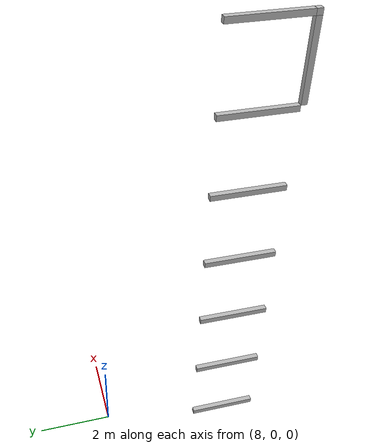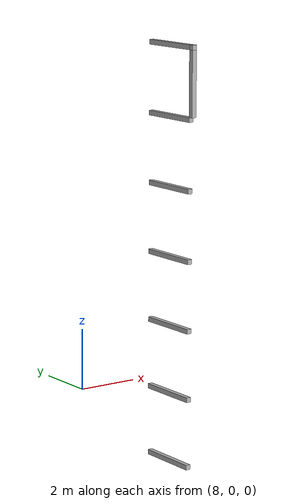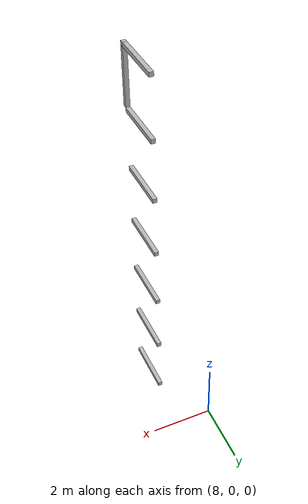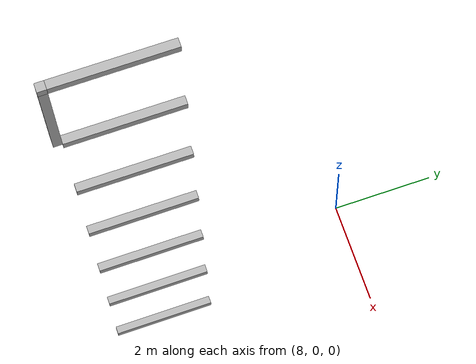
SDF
<sdf version="1.7">
 <world name="default">
  <model name="orthogonal_747_2.000.15_TS">
   <static>1</static>
   <link name="y_link_0_0_7">
    <inertial>
     <mass>1</mass>
     <inertia>
      <ixx>0.166667</ixx>
      <ixy>0</ixy>
      <ixz>0</ixz>
      <iyy>0.166667</iyy>
      <iyz>0</iyz>
      <izz>0.166667</izz>
     </inertia>
    </inertial>
    <pose>15.05 1.075 1.075 0 -0 0</pose>
    <visual name="visual_0">
     <laser_retro>148</laser_retro>
     <geometry><box><size>0.15 1e-06 0.15</size></box></geometry>
     <material>
      <script><name>Gazebo/Grey</name><uri>file://media/materials/scripts/gazebo.material</uri></script>
      <shader type="pixel"><normal_map>__default__</normal_map></shader>
      <ambient>0.678 0.498 0.659 1</ambient>
      <diffuse>0.7 0.7 0.7 1</diffuse>
      <specular>0.01 0.01 0.01 1</specular>
      <emissive>0 0 0 1</emissive>
     </material>
     <pose>0 -1 0 0 -0 0</pose>
     <transparency>1</transparency>
    </visual>
    <visual name="visual_1">
     <laser_retro>149</laser_retro>
     <geometry><box><size>0.15 1e-06 0.15</size></box></geometry>
     <material>
      <script><name>Gazebo/Grey</name><uri>file://media/materials/scripts/gazebo.material</uri></script>
      <shader type="pixel"><normal_map>__default__</normal_map></shader>
      <ambient>0.447 0.624 0.812 1</ambient>
      <diffuse>0.7 0.7 0.7 1</diffuse>
      <specular>0.01 0.01 0.01 1</specular>
      <emissive>0 0 0 1</emissive>
     </material>
     <pose>0 1 0 0 -0 0</pose>
     <transparency>1</transparency>
    </visual>
    <visual name="visual_2">
     <laser_retro>150</laser_retro>
     <geometry><box><size>0.15 2 1e-06</size></box></geometry>
     <material>
      <script><name>Gazebo/Grey</name><uri>file://media/materials/scripts/gazebo.material</uri></script>
      <shader type="pixel"><normal_map>__default__</normal_map></shader>
      <ambient>0.988 0.686 0.243 1</ambient>
      <diffuse>0.7 0.7 0.7 1</diffuse>
      <specular>0.01 0.01 0.01 1</specular>
      <emissive>0 0 0 1</emissive>
     </material>
     <pose>0 0 -0.075 0 -0 0</pose>
     <transparency>1</transparency>
    </visual>
    <visual name="visual_3">
     <laser_retro>151</laser_retro>
     <geometry><box><size>1e-06 2 0.15</size></box></geometry>
     <material>
      <script><name>Gazebo/Grey</name><uri>file://media/materials/scripts/gazebo.material</uri></script>
      <shader type="pixel"><normal_map>__default__</normal_map></shader>
      <ambient>0.988 0.914 0.31 1</ambient>
      <diffuse>0.7 0.7 0.7 1</diffuse>
      <specular>0.01 0.01 0.01 1</specular>
      <emissive>0 0 0 1</emissive>
     </material>
     <pose>0.075 0 0 0 -0 0</pose>
     <transparency>1</transparency>
    </visual>
    <visual name="visual_4">
     <laser_retro>152</laser_retro>
     <geometry><box><size>0.15 2 1e-06</size></box></geometry>
     <material>
      <script><name>Gazebo/Grey</name><uri>file://media/materials/scripts/gazebo.material</uri></script>
      <shader type="pixel"><normal_map>__default__</normal_map></shader>
      <ambient>0.937 0.161 0.161 1</ambient>
      <diffuse>0.7 0.7 0.7 1</diffuse>
      <specular>0.01 0.01 0.01 1</specular>
      <emissive>0 0 0 1</emissive>
     </material>
     <pose>0 0 0.075 0 -0 0</pose>
     <transparency>1</transparency>
    </visual>
    <visual name="visual_5">
     <laser_retro>153</laser_retro>
     <geometry><box><size>1e-06 2 0.15</size></box></geometry>
     <material>
      <script><name>Gazebo/Grey</name><uri>file://media/materials/scripts/gazebo.material</uri></script>
      <shader type="pixel"><normal_map>__default__</normal_map></shader>
      <ambient>0.541 0.886 0.204 1</ambient>
      <diffuse>0.7 0.7 0.7 1</diffuse>
      <specular>0.01 0.01 0.01 1</specular>
      <emissive>0 0 0 1</emissive>
     </material>
     <pose>-0.075 0 0 0 -0 0</pose>
     <transparency>1</transparency>
    </visual>
    <visual name="visual_texture">
     <geometry><box><size>0.149985 1.9998 0.149985</size></box></geometry>
     <material>
      <script>
       <uri>model://BASE_MODELS/simple_block_v2_textured/materials/scripts</uri>
       <uri>model://BASE_MODELS/simple_block_v2_textured/materials/textures</uri>
       <name>metal</name>
      </script>
     </material>
     <laser_retro>154</laser_retro>
    </visual>
    <collision name="collision">
     <geometry><box><size>0.15 2 0.15</size></box></geometry>
     <surface>
      <friction>
       <ode><mu>1</mu><mu2>1</mu2><fdir1>0 0 0</fdir1><slip1>0</slip1><slip2>0</slip2></ode>
       <torsional>
        <coefficient>1</coefficient>
        <patch_radius>0</patch_radius>
        <surface_radius>0</surface_radius>
        <use_patch_radius>1</use_patch_radius>
        <ode><slip>0</slip></ode>
       </torsional>
      </friction>
      <bounce><restitution_coefficient>0</restitution_coefficient><threshold>1e+06</threshold></bounce>
      <contact>
       <collide_without_contact>0</collide_without_contact>
       <collide_without_contact_bitmask>1</collide_without_contact_bitmask>
       <collide_bitmask>1</collide_bitmask>
       <ode>
        <soft_cfm>0</soft_cfm>
        <soft_erp>0.2</soft_erp>
        <kp>1e+13</kp>
        <kd>1</kd>
        <max_vel>0.01</max_vel>
        <min_depth>0</min_depth>
       </ode>
       <bullet>
        <split_impulse>1</split_impulse>
        <split_impulse_penetration_threshold>-0.01</split_impulse_penetration_threshold>
        <soft_cfm>0</soft_cfm>
        <soft_erp>0.2</soft_erp>
        <kp>1e+13</kp>
        <kd>1</kd>
       </bullet>
      </contact>
     </surface>
    </collision>
   </link>
   <link name="y_link_1_0_7">
    <inertial>
     <mass>1</mass>
     <inertia>
      <ixx>0.166667</ixx>
      <ixy>0</ixy>
      <ixz>0</ixz>
      <iyy>0.166667</iyy>
      <iyz>0</iyz>
      <izz>0.166667</izz>
     </inertia>
    </inertial>
    <pose>15.05 1.075 3.225 0 -0 0</pose>
    <visual name="visual_0">
     <laser_retro>946</laser_retro>
     <geometry><box><size>0.15 1e-06 0.15</size></box></geometry>
     <material>
      <script><name>Gazebo/Grey</name><uri>file://media/materials/scripts/gazebo.material</uri></script>
      <shader type="pixel"><normal_map>__default__</normal_map></shader>
      <ambient>0.678 0.498 0.659 1</ambient>
      <diffuse>0.7 0.7 0.7 1</diffuse>
      <specular>0.01 0.01 0.01 1</specular>
      <emissive>0 0 0 1</emissive>
     </material>
     <pose>0 -1 0 0 -0 0</pose>
     <transparency>1</transparency>
    </visual>
    <visual name="visual_1">
     <laser_retro>947</laser_retro>
     <geometry><box><size>0.15 1e-06 0.15</size></box></geometry>
     <material>
      <script><name>Gazebo/Grey</name><uri>file://media/materials/scripts/gazebo.material</uri></script>
      <shader type="pixel"><normal_map>__default__</normal_map></shader>
      <ambient>0.447 0.624 0.812 1</ambient>
      <diffuse>0.7 0.7 0.7 1</diffuse>
      <specular>0.01 0.01 0.01 1</specular>
      <emissive>0 0 0 1</emissive>
     </material>
     <pose>0 1 0 0 -0 0</pose>
     <transparency>1</transparency>
    </visual>
    <visual name="visual_2">
     <laser_retro>948</laser_retro>
     <geometry><box><size>0.15 2 1e-06</size></box></geometry>
     <material>
      <script><name>Gazebo/Grey</name><uri>file://media/materials/scripts/gazebo.material</uri></script>
      <shader type="pixel"><normal_map>__default__</normal_map></shader>
      <ambient>0.988 0.686 0.243 1</ambient>
      <diffuse>0.7 0.7 0.7 1</diffuse>
      <specular>0.01 0.01 0.01 1</specular>
      <emissive>0 0 0 1</emissive>
     </material>
     <pose>0 0 -0.075 0 -0 0</pose>
     <transparency>1</transparency>
    </visual>
    <visual name="visual_3">
     <laser_retro>949</laser_retro>
     <geometry><box><size>1e-06 2 0.15</size></box></geometry>
     <material>
      <script><name>Gazebo/Grey</name><uri>file://media/materials/scripts/gazebo.material</uri></script>
      <shader type="pixel"><normal_map>__default__</normal_map></shader>
      <ambient>0.988 0.914 0.31 1</ambient>
      <diffuse>0.7 0.7 0.7 1</diffuse>
      <specular>0.01 0.01 0.01 1</specular>
      <emissive>0 0 0 1</emissive>
     </material>
     <pose>0.075 0 0 0 -0 0</pose>
     <transparency>1</transparency>
    </visual>
    <visual name="visual_4">
     <laser_retro>950</laser_retro>
     <geometry><box><size>0.15 2 1e-06</size></box></geometry>
     <material>
      <script><name>Gazebo/Grey</name><uri>file://media/materials/scripts/gazebo.material</uri></script>
      <shader type="pixel"><normal_map>__default__</normal_map></shader>
      <ambient>0.937 0.161 0.161 1</ambient>
      <diffuse>0.7 0.7 0.7 1</diffuse>
      <specular>0.01 0.01 0.01 1</specular>
      <emissive>0 0 0 1</emissive>
     </material>
     <pose>0 0 0.075 0 -0 0</pose>
     <transparency>1</transparency>
    </visual>
    <visual name="visual_5">
     <laser_retro>951</laser_retro>
     <geometry><box><size>1e-06 2 0.15</size></box></geometry>
     <material>
      <script><name>Gazebo/Grey</name><uri>file://media/materials/scripts/gazebo.material</uri></script>
      <shader type="pixel"><normal_map>__default__</normal_map></shader>
      <ambient>0.541 0.886 0.204 1</ambient>
      <diffuse>0.7 0.7 0.7 1</diffuse>
      <specular>0.01 0.01 0.01 1</specular>
      <emissive>0 0 0 1</emissive>
     </material>
     <pose>-0.075 0 0 0 -0 0</pose>
     <transparency>1</transparency>
    </visual>
    <visual name="visual_texture">
     <geometry><box><size>0.149985 1.9998 0.149985</size></box></geometry>
     <material>
      <script>
       <uri>model://BASE_MODELS/simple_block_v2_textured/materials/scripts</uri>
       <uri>model://BASE_MODELS/simple_block_v2_textured/materials/textures</uri>
       <name>metal</name>
      </script>
     </material>
     <laser_retro>952</laser_retro>
    </visual>
    <collision name="collision">
     <geometry><box><size>0.15 2 0.15</size></box></geometry>
     <surface>
      <friction>
       <ode><mu>1</mu><mu2>1</mu2><fdir1>0 0 0</fdir1><slip1>0</slip1><slip2>0</slip2></ode>
       <torsional>
        <coefficient>1</coefficient>
        <patch_radius>0</patch_radius>
        <surface_radius>0</surface_radius>
        <use_patch_radius>1</use_patch_radius>
        <ode><slip>0</slip></ode>
       </torsional>
      </friction>
      <bounce><restitution_coefficient>0</restitution_coefficient><threshold>1e+06</threshold></bounce>
      <contact>
       <collide_without_contact>0</collide_without_contact>
       <collide_without_contact_bitmask>1</collide_without_contact_bitmask>
       <collide_bitmask>1</collide_bitmask>
       <ode>
        <soft_cfm>0</soft_cfm>
        <soft_erp>0.2</soft_erp>
        <kp>1e+13</kp>
        <kd>1</kd>
        <max_vel>0.01</max_vel>
        <min_depth>0</min_depth>
       </ode>
       <bullet>
        <split_impulse>1</split_impulse>
        <split_impulse_penetration_threshold>-0.01</split_impulse_penetration_threshold>
        <soft_cfm>0</soft_cfm>
        <soft_erp>0.2</soft_erp>
        <kp>1e+13</kp>
        <kd>1</kd>
       </bullet>
      </contact>
     </surface>
    </collision>
   </link>
   <link name="y_link_2_0_7">
    <inertial>
     <mass>1</mass>
     <inertia>
      <ixx>0.166667</ixx>
      <ixy>0</ixy>
      <ixz>0</ixz>
      <iyy>0.166667</iyy>
      <iyz>0</iyz>
      <izz>0.166667</izz>
     </inertia>
    </inertial>
    <pose>15.05 1.075 5.375 0 -0 0</pose>
    <visual name="visual_0">
     <laser_retro>1849</laser_retro>
     <geometry><box><size>0.15 1e-06 0.15</size></box></geometry>
     <material>
      <script><name>Gazebo/Grey</name><uri>file://media/materials/scripts/gazebo.material</uri></script>
      <shader type="pixel"><normal_map>__default__</normal_map></shader>
      <ambient>0.678 0.498 0.659 1</ambient>
      <diffuse>0.7 0.7 0.7 1</diffuse>
      <specular>0.01 0.01 0.01 1</specular>
      <emissive>0 0 0 1</emissive>
     </material>
     <pose>0 -1 0 0 -0 0</pose>
     <transparency>1</transparency>
    </visual>
    <visual name="visual_1">
     <laser_retro>1850</laser_retro>
     <geometry><box><size>0.15 1e-06 0.15</size></box></geometry>
     <material>
      <script><name>Gazebo/Grey</name><uri>file://media/materials/scripts/gazebo.material</uri></script>
      <shader type="pixel"><normal_map>__default__</normal_map></shader>
      <ambient>0.447 0.624 0.812 1</ambient>
      <diffuse>0.7 0.7 0.7 1</diffuse>
      <specular>0.01 0.01 0.01 1</specular>
      <emissive>0 0 0 1</emissive>
     </material>
     <pose>0 1 0 0 -0 0</pose>
     <transparency>1</transparency>
    </visual>
    <visual name="visual_2">
     <laser_retro>1851</laser_retro>
     <geometry><box><size>0.15 2 1e-06</size></box></geometry>
     <material>
      <script><name>Gazebo/Grey</name><uri>file://media/materials/scripts/gazebo.material</uri></script>
      <shader type="pixel"><normal_map>__default__</normal_map></shader>
      <ambient>0.988 0.686 0.243 1</ambient>
      <diffuse>0.7 0.7 0.7 1</diffuse>
      <specular>0.01 0.01 0.01 1</specular>
      <emissive>0 0 0 1</emissive>
     </material>
     <pose>0 0 -0.075 0 -0 0</pose>
     <transparency>1</transparency>
    </visual>
    <visual name="visual_3">
     <laser_retro>1852</laser_retro>
     <geometry><box><size>1e-06 2 0.15</size></box></geometry>
     <material>
      <script><name>Gazebo/Grey</name><uri>file://media/materials/scripts/gazebo.material</uri></script>
      <shader type="pixel"><normal_map>__default__</normal_map></shader>
      <ambient>0.988 0.914 0.31 1</ambient>
      <diffuse>0.7 0.7 0.7 1</diffuse>
      <specular>0.01 0.01 0.01 1</specular>
      <emissive>0 0 0 1</emissive>
     </material>
     <pose>0.075 0 0 0 -0 0</pose>
     <transparency>1</transparency>
    </visual>
    <visual name="visual_4">
     <laser_retro>1853</laser_retro>
     <geometry><box><size>0.15 2 1e-06</size></box></geometry>
     <material>
      <script><name>Gazebo/Grey</name><uri>file://media/materials/scripts/gazebo.material</uri></script>
      <shader type="pixel"><normal_map>__default__</normal_map></shader>
      <ambient>0.937 0.161 0.161 1</ambient>
      <diffuse>0.7 0.7 0.7 1</diffuse>
      <specular>0.01 0.01 0.01 1</specular>
      <emissive>0 0 0 1</emissive>
     </material>
     <pose>0 0 0.075 0 -0 0</pose>
     <transparency>1</transparency>
    </visual>
    <visual name="visual_5">
     <laser_retro>1854</laser_retro>
     <geometry><box><size>1e-06 2 0.15</size></box></geometry>
     <material>
      <script><name>Gazebo/Grey</name><uri>file://media/materials/scripts/gazebo.material</uri></script>
      <shader type="pixel"><normal_map>__default__</normal_map></shader>
      <ambient>0.541 0.886 0.204 1</ambient>
      <diffuse>0.7 0.7 0.7 1</diffuse>
      <specular>0.01 0.01 0.01 1</specular>
      <emissive>0 0 0 1</emissive>
     </material>
     <pose>-0.075 0 0 0 -0 0</pose>
     <transparency>1</transparency>
    </visual>
    <visual name="visual_texture">
     <geometry><box><size>0.149985 1.9998 0.149985</size></box></geometry>
     <material>
      <script>
       <uri>model://BASE_MODELS/simple_block_v2_textured/materials/scripts</uri>
       <uri>model://BASE_MODELS/simple_block_v2_textured/materials/textures</uri>
       <name>metal</name>
      </script>
     </material>
     <laser_retro>1855</laser_retro>
    </visual>
    <collision name="collision">
     <geometry><box><size>0.15 2 0.15</size></box></geometry>
     <surface>
      <friction>
       <ode><mu>1</mu><mu2>1</mu2><fdir1>0 0 0</fdir1><slip1>0</slip1><slip2>0</slip2></ode>
       <torsional>
        <coefficient>1</coefficient>
        <patch_radius>0</patch_radius>
        <surface_radius>0</surface_radius>
        <use_patch_radius>1</use_patch_radius>
        <ode><slip>0</slip></ode>
       </torsional>
      </friction>
      <bounce><restitution_coefficient>0</restitution_coefficient><threshold>1e+06</threshold></bounce>
      <contact>
       <collide_without_contact>0</collide_without_contact>
       <collide_without_contact_bitmask>1</collide_without_contact_bitmask>
       <collide_bitmask>1</collide_bitmask>
       <ode>
        <soft_cfm>0</soft_cfm>
        <soft_erp>0.2</soft_erp>
        <kp>1e+13</kp>
        <kd>1</kd>
        <max_vel>0.01</max_vel>
        <min_depth>0</min_depth>
       </ode>
       <bullet>
        <split_impulse>1</split_impulse>
        <split_impulse_penetration_threshold>-0.01</split_impulse_penetration_threshold>
        <soft_cfm>0</soft_cfm>
        <soft_erp>0.2</soft_erp>
        <kp>1e+13</kp>
        <kd>1</kd>
       </bullet>
      </contact>
     </surface>
    </collision>
   </link>
   <link name="y_link_3_0_7">
    <inertial>
     <mass>1</mass>
     <inertia>
      <ixx>0.166667</ixx>
      <ixy>0</ixy>
      <ixz>0</ixz>
      <iyy>0.166667</iyy>
      <iyz>0</iyz>
      <izz>0.166667</izz>
     </inertia>
    </inertial>
    <pose>15.05 1.075 7.525 0 -0 0</pose>
    <visual name="visual_0">
     <laser_retro>2752</laser_retro>
     <geometry><box><size>0.15 1e-06 0.15</size></box></geometry>
     <material>
      <script><name>Gazebo/Grey</name><uri>file://media/materials/scripts/gazebo.material</uri></script>
      <shader type="pixel"><normal_map>__default__</normal_map></shader>
      <ambient>0.678 0.498 0.659 1</ambient>
      <diffuse>0.7 0.7 0.7 1</diffuse>
      <specular>0.01 0.01 0.01 1</specular>
      <emissive>0 0 0 1</emissive>
     </material>
     <pose>0 -1 0 0 -0 0</pose>
     <transparency>1</transparency>
    </visual>
    <visual name="visual_1">
     <laser_retro>2753</laser_retro>
     <geometry><box><size>0.15 1e-06 0.15</size></box></geometry>
     <material>
      <script><name>Gazebo/Grey</name><uri>file://media/materials/scripts/gazebo.material</uri></script>
      <shader type="pixel"><normal_map>__default__</normal_map></shader>
      <ambient>0.447 0.624 0.812 1</ambient>
      <diffuse>0.7 0.7 0.7 1</diffuse>
      <specular>0.01 0.01 0.01 1</specular>
      <emissive>0 0 0 1</emissive>
     </material>
     <pose>0 1 0 0 -0 0</pose>
     <transparency>1</transparency>
    </visual>
    <visual name="visual_2">
     <laser_retro>2754</laser_retro>
     <geometry><box><size>0.15 2 1e-06</size></box></geometry>
     <material>
      <script><name>Gazebo/Grey</name><uri>file://media/materials/scripts/gazebo.material</uri></script>
      <shader type="pixel"><normal_map>__default__</normal_map></shader>
      <ambient>0.988 0.686 0.243 1</ambient>
      <diffuse>0.7 0.7 0.7 1</diffuse>
      <specular>0.01 0.01 0.01 1</specular>
      <emissive>0 0 0 1</emissive>
     </material>
     <pose>0 0 -0.075 0 -0 0</pose>
     <transparency>1</transparency>
    </visual>
    <visual name="visual_3">
     <laser_retro>2755</laser_retro>
     <geometry><box><size>1e-06 2 0.15</size></box></geometry>
     <material>
      <script><name>Gazebo/Grey</name><uri>file://media/materials/scripts/gazebo.material</uri></script>
      <shader type="pixel"><normal_map>__default__</normal_map></shader>
      <ambient>0.988 0.914 0.31 1</ambient>
      <diffuse>0.7 0.7 0.7 1</diffuse>
      <specular>0.01 0.01 0.01 1</specular>
      <emissive>0 0 0 1</emissive>
     </material>
     <pose>0.075 0 0 0 -0 0</pose>
     <transparency>1</transparency>
    </visual>
    <visual name="visual_4">
     <laser_retro>2756</laser_retro>
     <geometry><box><size>0.15 2 1e-06</size></box></geometry>
     <material>
      <script><name>Gazebo/Grey</name><uri>file://media/materials/scripts/gazebo.material</uri></script>
      <shader type="pixel"><normal_map>__default__</normal_map></shader>
      <ambient>0.937 0.161 0.161 1</ambient>
      <diffuse>0.7 0.7 0.7 1</diffuse>
      <specular>0.01 0.01 0.01 1</specular>
      <emissive>0 0 0 1</emissive>
     </material>
     <pose>0 0 0.075 0 -0 0</pose>
     <transparency>1</transparency>
    </visual>
    <visual name="visual_5">
     <laser_retro>2757</laser_retro>
     <geometry><box><size>1e-06 2 0.15</size></box></geometry>
     <material>
      <script><name>Gazebo/Grey</name><uri>file://media/materials/scripts/gazebo.material</uri></script>
      <shader type="pixel"><normal_map>__default__</normal_map></shader>
      <ambient>0.541 0.886 0.204 1</ambient>
      <diffuse>0.7 0.7 0.7 1</diffuse>
      <specular>0.01 0.01 0.01 1</specular>
      <emissive>0 0 0 1</emissive>
     </material>
     <pose>-0.075 0 0 0 -0 0</pose>
     <transparency>1</transparency>
    </visual>
    <visual name="visual_texture">
     <geometry><box><size>0.149985 1.9998 0.149985</size></box></geometry>
     <material>
      <script>
       <uri>model://BASE_MODELS/simple_block_v2_textured/materials/scripts</uri>
       <uri>model://BASE_MODELS/simple_block_v2_textured/materials/textures</uri>
       <name>metal</name>
      </script>
     </material>
     <laser_retro>2758</laser_retro>
    </visual>
    <collision name="collision">
     <geometry><box><size>0.15 2 0.15</size></box></geometry>
     <surface>
      <friction>
       <ode><mu>1</mu><mu2>1</mu2><fdir1>0 0 0</fdir1><slip1>0</slip1><slip2>0</slip2></ode>
       <torsional>
        <coefficient>1</coefficient>
        <patch_radius>0</patch_radius>
        <surface_radius>0</surface_radius>
        <use_patch_radius>1</use_patch_radius>
        <ode><slip>0</slip></ode>
       </torsional>
      </friction>
      <bounce><restitution_coefficient>0</restitution_coefficient><threshold>1e+06</threshold></bounce>
      <contact>
       <collide_without_contact>0</collide_without_contact>
       <collide_without_contact_bitmask>1</collide_without_contact_bitmask>
       <collide_bitmask>1</collide_bitmask>
       <ode>
        <soft_cfm>0</soft_cfm>
        <soft_erp>0.2</soft_erp>
        <kp>1e+13</kp>
        <kd>1</kd>
        <max_vel>0.01</max_vel>
        <min_depth>0</min_depth>
       </ode>
       <bullet>
        <split_impulse>1</split_impulse>
        <split_impulse_penetration_threshold>-0.01</split_impulse_penetration_threshold>
        <soft_cfm>0</soft_cfm>
        <soft_erp>0.2</soft_erp>
        <kp>1e+13</kp>
        <kd>1</kd>
       </bullet>
      </contact>
     </surface>
    </collision>
   </link>
   <link name="y_link_4_0_7">
    <inertial>
     <mass>1</mass>
     <inertia>
      <ixx>0.166667</ixx>
      <ixy>0</ixy>
      <ixz>0</ixz>
      <iyy>0.166667</iyy>
      <iyz>0</iyz>
      <izz>0.166667</izz>
     </inertia>
    </inertial>
    <pose>15.05 1.075 9.675 0 -0 0</pose>
    <visual name="visual_0">
     <laser_retro>3655</laser_retro>
     <geometry><box><size>0.15 1e-06 0.15</size></box></geometry>
     <material>
      <script><name>Gazebo/Grey</name><uri>file://media/materials/scripts/gazebo.material</uri></script>
      <shader type="pixel"><normal_map>__default__</normal_map></shader>
      <ambient>0.678 0.498 0.659 1</ambient>
      <diffuse>0.7 0.7 0.7 1</diffuse>
      <specular>0.01 0.01 0.01 1</specular>
      <emissive>0 0 0 1</emissive>
     </material>
     <pose>0 -1 0 0 -0 0</pose>
     <transparency>1</transparency>
    </visual>
    <visual name="visual_1">
     <laser_retro>3656</laser_retro>
     <geometry><box><size>0.15 1e-06 0.15</size></box></geometry>
     <material>
      <script><name>Gazebo/Grey</name><uri>file://media/materials/scripts/gazebo.material</uri></script>
      <shader type="pixel"><normal_map>__default__</normal_map></shader>
      <ambient>0.447 0.624 0.812 1</ambient>
      <diffuse>0.7 0.7 0.7 1</diffuse>
      <specular>0.01 0.01 0.01 1</specular>
      <emissive>0 0 0 1</emissive>
     </material>
     <pose>0 1 0 0 -0 0</pose>
     <transparency>1</transparency>
    </visual>
    <visual name="visual_2">
     <laser_retro>3657</laser_retro>
     <geometry><box><size>0.15 2 1e-06</size></box></geometry>
     <material>
      <script><name>Gazebo/Grey</name><uri>file://media/materials/scripts/gazebo.material</uri></script>
      <shader type="pixel"><normal_map>__default__</normal_map></shader>
      <ambient>0.988 0.686 0.243 1</ambient>
      <diffuse>0.7 0.7 0.7 1</diffuse>
      <specular>0.01 0.01 0.01 1</specular>
      <emissive>0 0 0 1</emissive>
     </material>
     <pose>0 0 -0.075 0 -0 0</pose>
     <transparency>1</transparency>
    </visual>
    <visual name="visual_3">
     <laser_retro>3658</laser_retro>
     <geometry><box><size>1e-06 2 0.15</size></box></geometry>
     <material>
      <script><name>Gazebo/Grey</name><uri>file://media/materials/scripts/gazebo.material</uri></script>
      <shader type="pixel"><normal_map>__default__</normal_map></shader>
      <ambient>0.988 0.914 0.31 1</ambient>
      <diffuse>0.7 0.7 0.7 1</diffuse>
      <specular>0.01 0.01 0.01 1</specular>
      <emissive>0 0 0 1</emissive>
     </material>
     <pose>0.075 0 0 0 -0 0</pose>
     <transparency>1</transparency>
    </visual>
    <visual name="visual_4">
     <laser_retro>3659</laser_retro>
     <geometry><box><size>0.15 2 1e-06</size></box></geometry>
     <material>
      <script><name>Gazebo/Grey</name><uri>file://media/materials/scripts/gazebo.material</uri></script>
      <shader type="pixel"><normal_map>__default__</normal_map></shader>
      <ambient>0.937 0.161 0.161 1</ambient>
      <diffuse>0.7 0.7 0.7 1</diffuse>
      <specular>0.01 0.01 0.01 1</specular>
      <emissive>0 0 0 1</emissive>
     </material>
     <pose>0 0 0.075 0 -0 0</pose>
     <transparency>1</transparency>
    </visual>
    <visual name="visual_5">
     <laser_retro>3660</laser_retro>
     <geometry><box><size>1e-06 2 0.15</size></box></geometry>
     <material>
      <script><name>Gazebo/Grey</name><uri>file://media/materials/scripts/gazebo.material</uri></script>
      <shader type="pixel"><normal_map>__default__</normal_map></shader>
      <ambient>0.541 0.886 0.204 1</ambient>
      <diffuse>0.7 0.7 0.7 1</diffuse>
      <specular>0.01 0.01 0.01 1</specular>
      <emissive>0 0 0 1</emissive>
     </material>
     <pose>-0.075 0 0 0 -0 0</pose>
     <transparency>1</transparency>
    </visual>
    <visual name="visual_texture">
     <geometry><box><size>0.149985 1.9998 0.149985</size></box></geometry>
     <material>
      <script>
       <uri>model://BASE_MODELS/simple_block_v2_textured/materials/scripts</uri>
       <uri>model://BASE_MODELS/simple_block_v2_textured/materials/textures</uri>
       <name>metal</name>
      </script>
     </material>
     <laser_retro>3661</laser_retro>
    </visual>
    <collision name="collision">
     <geometry><box><size>0.15 2 0.15</size></box></geometry>
     <surface>
      <friction>
       <ode><mu>1</mu><mu2>1</mu2><fdir1>0 0 0</fdir1><slip1>0</slip1><slip2>0</slip2></ode>
       <torsional>
        <coefficient>1</coefficient>
        <patch_radius>0</patch_radius>
        <surface_radius>0</surface_radius>
        <use_patch_radius>1</use_patch_radius>
        <ode><slip>0</slip></ode>
       </torsional>
      </friction>
      <bounce><restitution_coefficient>0</restitution_coefficient><threshold>1e+06</threshold></bounce>
      <contact>
       <collide_without_contact>0</collide_without_contact>
       <collide_without_contact_bitmask>1</collide_without_contact_bitmask>
       <collide_bitmask>1</collide_bitmask>
       <ode>
        <soft_cfm>0</soft_cfm>
        <soft_erp>0.2</soft_erp>
        <kp>1e+13</kp>
        <kd>1</kd>
        <max_vel>0.01</max_vel>
        <min_depth>0</min_depth>
       </ode>
       <bullet>
        <split_impulse>1</split_impulse>
        <split_impulse_penetration_threshold>-0.01</split_impulse_penetration_threshold>
        <soft_cfm>0</soft_cfm>
        <soft_erp>0.2</soft_erp>
        <kp>1e+13</kp>
        <kd>1</kd>
       </bullet>
      </contact>
     </surface>
    </collision>
   </link>
   <link name="y_link_5_0_7">
    <inertial>
     <mass>1</mass>
     <inertia>
      <ixx>0.166667</ixx>
      <ixy>0</ixy>
      <ixz>0</ixz>
      <iyy>0.166667</iyy>
      <iyz>0</iyz>
      <izz>0.166667</izz>
     </inertia>
    </inertial>
    <pose>15.05 1.075 11.825 0 -0 0</pose>
    <visual name="visual_0">
     <laser_retro>4558</laser_retro>
     <geometry><box><size>0.15 1e-06 0.15</size></box></geometry>
     <material>
      <script><name>Gazebo/Grey</name><uri>file://media/materials/scripts/gazebo.material</uri></script>
      <shader type="pixel"><normal_map>__default__</normal_map></shader>
      <ambient>0.678 0.498 0.659 1</ambient>
      <diffuse>0.7 0.7 0.7 1</diffuse>
      <specular>0.01 0.01 0.01 1</specular>
      <emissive>0 0 0 1</emissive>
     </material>
     <pose>0 -1 0 0 -0 0</pose>
     <transparency>1</transparency>
    </visual>
    <visual name="visual_1">
     <laser_retro>4559</laser_retro>
     <geometry><box><size>0.15 1e-06 0.15</size></box></geometry>
     <material>
      <script><name>Gazebo/Grey</name><uri>file://media/materials/scripts/gazebo.material</uri></script>
      <shader type="pixel"><normal_map>__default__</normal_map></shader>
      <ambient>0.447 0.624 0.812 1</ambient>
      <diffuse>0.7 0.7 0.7 1</diffuse>
      <specular>0.01 0.01 0.01 1</specular>
      <emissive>0 0 0 1</emissive>
     </material>
     <pose>0 1 0 0 -0 0</pose>
     <transparency>1</transparency>
    </visual>
    <visual name="visual_2">
     <laser_retro>4560</laser_retro>
     <geometry><box><size>0.15 2 1e-06</size></box></geometry>
     <material>
      <script><name>Gazebo/Grey</name><uri>file://media/materials/scripts/gazebo.material</uri></script>
      <shader type="pixel"><normal_map>__default__</normal_map></shader>
      <ambient>0.988 0.686 0.243 1</ambient>
      <diffuse>0.7 0.7 0.7 1</diffuse>
      <specular>0.01 0.01 0.01 1</specular>
      <emissive>0 0 0 1</emissive>
     </material>
     <pose>0 0 -0.075 0 -0 0</pose>
     <transparency>1</transparency>
    </visual>
    <visual name="visual_3">
     <laser_retro>4561</laser_retro>
     <geometry><box><size>1e-06 2 0.15</size></box></geometry>
     <material>
      <script><name>Gazebo/Grey</name><uri>file://media/materials/scripts/gazebo.material</uri></script>
      <shader type="pixel"><normal_map>__default__</normal_map></shader>
      <ambient>0.988 0.914 0.31 1</ambient>
      <diffuse>0.7 0.7 0.7 1</diffuse>
      <specular>0.01 0.01 0.01 1</specular>
      <emissive>0 0 0 1</emissive>
     </material>
     <pose>0.075 0 0 0 -0 0</pose>
     <transparency>1</transparency>
    </visual>
    <visual name="visual_4">
     <laser_retro>4562</laser_retro>
     <geometry><box><size>0.15 2 1e-06</size></box></geometry>
     <material>
      <script><name>Gazebo/Grey</name><uri>file://media/materials/scripts/gazebo.material</uri></script>
      <shader type="pixel"><normal_map>__default__</normal_map></shader>
      <ambient>0.937 0.161 0.161 1</ambient>
      <diffuse>0.7 0.7 0.7 1</diffuse>
      <specular>0.01 0.01 0.01 1</specular>
      <emissive>0 0 0 1</emissive>
     </material>
     <pose>0 0 0.075 0 -0 0</pose>
     <transparency>1</transparency>
    </visual>
    <visual name="visual_5">
     <laser_retro>4563</laser_retro>
     <geometry><box><size>1e-06 2 0.15</size></box></geometry>
     <material>
      <script><name>Gazebo/Grey</name><uri>file://media/materials/scripts/gazebo.material</uri></script>
      <shader type="pixel"><normal_map>__default__</normal_map></shader>
      <ambient>0.541 0.886 0.204 1</ambient>
      <diffuse>0.7 0.7 0.7 1</diffuse>
      <specular>0.01 0.01 0.01 1</specular>
      <emissive>0 0 0 1</emissive>
     </material>
     <pose>-0.075 0 0 0 -0 0</pose>
     <transparency>1</transparency>
    </visual>
    <visual name="visual_texture">
     <geometry><box><size>0.149985 1.9998 0.149985</size></box></geometry>
     <material>
      <script>
       <uri>model://BASE_MODELS/simple_block_v2_textured/materials/scripts</uri>
       <uri>model://BASE_MODELS/simple_block_v2_textured/materials/textures</uri>
       <name>metal</name>
      </script>
     </material>
     <laser_retro>4564</laser_retro>
    </visual>
    <collision name="collision">
     <geometry><box><size>0.15 2 0.15</size></box></geometry>
     <surface>
      <friction>
       <ode><mu>1</mu><mu2>1</mu2><fdir1>0 0 0</fdir1><slip1>0</slip1><slip2>0</slip2></ode>
       <torsional>
        <coefficient>1</coefficient>
        <patch_radius>0</patch_radius>
        <surface_radius>0</surface_radius>
        <use_patch_radius>1</use_patch_radius>
        <ode><slip>0</slip></ode>
       </torsional>
      </friction>
      <bounce><restitution_coefficient>0</restitution_coefficient><threshold>1e+06</threshold></bounce>
      <contact>
       <collide_without_contact>0</collide_without_contact>
       <collide_without_contact_bitmask>1</collide_without_contact_bitmask>
       <collide_bitmask>1</collide_bitmask>
       <ode>
        <soft_cfm>0</soft_cfm>
        <soft_erp>0.2</soft_erp>
        <kp>1e+13</kp>
        <kd>1</kd>
        <max_vel>0.01</max_vel>
        <min_depth>0</min_depth>
       </ode>
       <bullet>
        <split_impulse>1</split_impulse>
        <split_impulse_penetration_threshold>-0.01</split_impulse_penetration_threshold>
        <soft_cfm>0</soft_cfm>
        <soft_erp>0.2</soft_erp>
        <kp>1e+13</kp>
        <kd>1</kd>
       </bullet>
      </contact>
     </surface>
    </collision>
   </link>
   <link name="y_link_6_0_7">
    <inertial>
     <mass>1</mass>
     <inertia>
      <ixx>0.166667</ixx>
      <ixy>0</ixy>
      <ixz>0</ixz>
      <iyy>0.166667</iyy>
      <iyz>0</iyz>
      <izz>0.166667</izz>
     </inertia>
    </inertial>
    <pose>15.05 1.075 13.975 0 -0 0</pose>
    <visual name="visual_0">
     <laser_retro>5461</laser_retro>
     <geometry><box><size>0.15 1e-06 0.15</size></box></geometry>
     <material>
      <script><name>Gazebo/Grey</name><uri>file://media/materials/scripts/gazebo.material</uri></script>
      <shader type="pixel"><normal_map>__default__</normal_map></shader>
      <ambient>0.678 0.498 0.659 1</ambient>
      <diffuse>0.7 0.7 0.7 1</diffuse>
      <specular>0.01 0.01 0.01 1</specular>
      <emissive>0 0 0 1</emissive>
     </material>
     <pose>0 -1 0 0 -0 0</pose>
     <transparency>1</transparency>
    </visual>
    <visual name="visual_1">
     <laser_retro>5462</laser_retro>
     <geometry><box><size>0.15 1e-06 0.15</size></box></geometry>
     <material>
      <script><name>Gazebo/Grey</name><uri>file://media/materials/scripts/gazebo.material</uri></script>
      <shader type="pixel"><normal_map>__default__</normal_map></shader>
      <ambient>0.447 0.624 0.812 1</ambient>
      <diffuse>0.7 0.7 0.7 1</diffuse>
      <specular>0.01 0.01 0.01 1</specular>
      <emissive>0 0 0 1</emissive>
     </material>
     <pose>0 1 0 0 -0 0</pose>
     <transparency>1</transparency>
    </visual>
    <visual name="visual_2">
     <laser_retro>5463</laser_retro>
     <geometry><box><size>0.15 2 1e-06</size></box></geometry>
     <material>
      <script><name>Gazebo/Grey</name><uri>file://media/materials/scripts/gazebo.material</uri></script>
      <shader type="pixel"><normal_map>__default__</normal_map></shader>
      <ambient>0.988 0.686 0.243 1</ambient>
      <diffuse>0.7 0.7 0.7 1</diffuse>
      <specular>0.01 0.01 0.01 1</specular>
      <emissive>0 0 0 1</emissive>
     </material>
     <pose>0 0 -0.075 0 -0 0</pose>
     <transparency>1</transparency>
    </visual>
    <visual name="visual_3">
     <laser_retro>5464</laser_retro>
     <geometry><box><size>1e-06 2 0.15</size></box></geometry>
     <material>
      <script><name>Gazebo/Grey</name><uri>file://media/materials/scripts/gazebo.material</uri></script>
      <shader type="pixel"><normal_map>__default__</normal_map></shader>
      <ambient>0.988 0.914 0.31 1</ambient>
      <diffuse>0.7 0.7 0.7 1</diffuse>
      <specular>0.01 0.01 0.01 1</specular>
      <emissive>0 0 0 1</emissive>
     </material>
     <pose>0.075 0 0 0 -0 0</pose>
     <transparency>1</transparency>
    </visual>
    <visual name="visual_4">
     <laser_retro>5465</laser_retro>
     <geometry><box><size>0.15 2 1e-06</size></box></geometry>
     <material>
      <script><name>Gazebo/Grey</name><uri>file://media/materials/scripts/gazebo.material</uri></script>
      <shader type="pixel"><normal_map>__default__</normal_map></shader>
      <ambient>0.937 0.161 0.161 1</ambient>
      <diffuse>0.7 0.7 0.7 1</diffuse>
      <specular>0.01 0.01 0.01 1</specular>
      <emissive>0 0 0 1</emissive>
     </material>
     <pose>0 0 0.075 0 -0 0</pose>
     <transparency>1</transparency>
    </visual>
    <visual name="visual_5">
     <laser_retro>5466</laser_retro>
     <geometry><box><size>1e-06 2 0.15</size></box></geometry>
     <material>
      <script><name>Gazebo/Grey</name><uri>file://media/materials/scripts/gazebo.material</uri></script>
      <shader type="pixel"><normal_map>__default__</normal_map></shader>
      <ambient>0.541 0.886 0.204 1</ambient>
      <diffuse>0.7 0.7 0.7 1</diffuse>
      <specular>0.01 0.01 0.01 1</specular>
      <emissive>0 0 0 1</emissive>
     </material>
     <pose>-0.075 0 0 0 -0 0</pose>
     <transparency>1</transparency>
    </visual>
    <visual name="visual_texture">
     <geometry><box><size>0.149985 1.9998 0.149985</size></box></geometry>
     <material>
      <script>
       <uri>model://BASE_MODELS/simple_block_v2_textured/materials/scripts</uri>
       <uri>model://BASE_MODELS/simple_block_v2_textured/materials/textures</uri>
       <name>metal</name>
      </script>
     </material>
     <laser_retro>5467</laser_retro>
    </visual>
    <collision name="collision">
     <geometry><box><size>0.15 2 0.15</size></box></geometry>
     <surface>
      <friction>
       <ode><mu>1</mu><mu2>1</mu2><fdir1>0 0 0</fdir1><slip1>0</slip1><slip2>0</slip2></ode>
       <torsional>
        <coefficient>1</coefficient>
        <patch_radius>0</patch_radius>
        <surface_radius>0</surface_radius>
        <use_patch_radius>1</use_patch_radius>
        <ode><slip>0</slip></ode>
       </torsional>
      </friction>
      <bounce><restitution_coefficient>0</restitution_coefficient><threshold>1e+06</threshold></bounce>
      <contact>
       <collide_without_contact>0</collide_without_contact>
       <collide_without_contact_bitmask>1</collide_without_contact_bitmask>
       <collide_bitmask>1</collide_bitmask>
       <ode>
        <soft_cfm>0</soft_cfm>
        <soft_erp>0.2</soft_erp>
        <kp>1e+13</kp>
        <kd>1</kd>
        <max_vel>0.01</max_vel>
        <min_depth>0</min_depth>
       </ode>
       <bullet>
        <split_impulse>1</split_impulse>
        <split_impulse_penetration_threshold>-0.01</split_impulse_penetration_threshold>
        <soft_cfm>0</soft_cfm>
        <soft_erp>0.2</soft_erp>
        <kp>1e+13</kp>
        <kd>1</kd>
       </bullet>
      </contact>
     </surface>
    </collision>
   </link>
   <link name="u_link_6_0_7">
    <inertial>
     <mass>1</mass>
     <inertia>
      <ixx>0.166667</ixx>
      <ixy>0</ixy>
      <ixz>0</ixz>
      <iyy>0.166667</iyy>
      <iyz>0</iyz>
      <izz>0.166667</izz>
     </inertia>
    </inertial>
    <pose>15.05 0 13.975 0 -0 0</pose>
    <visual name="visual_0">
     <laser_retro>5468</laser_retro>
     <geometry><box><size>0.15 1e-06 0.15</size></box></geometry>
     <material>
      <script><name>Gazebo/Grey</name><uri>file://media/materials/scripts/gazebo.material</uri></script>
      <shader type="pixel"><normal_map>__default__</normal_map></shader>
      <ambient>0.678 0.498 0.659 1</ambient>
      <diffuse>0.7 0.7 0.7 1</diffuse>
      <specular>0.01 0.01 0.01 1</specular>
      <emissive>0 0 0 1</emissive>
     </material>
     <pose>0 -0.075 0 0 -0 0</pose>
     <transparency>1</transparency>
    </visual>
    <visual name="visual_1">
     <laser_retro>5469</laser_retro>
     <geometry><box><size>0.15 1e-06 0.15</size></box></geometry>
     <material>
      <script><name>Gazebo/Grey</name><uri>file://media/materials/scripts/gazebo.material</uri></script>
      <shader type="pixel"><normal_map>__default__</normal_map></shader>
      <ambient>0.447 0.624 0.812 1</ambient>
      <diffuse>0.7 0.7 0.7 1</diffuse>
      <specular>0.01 0.01 0.01 1</specular>
      <emissive>0 0 0 1</emissive>
     </material>
     <pose>0 0.075 0 0 -0 0</pose>
     <transparency>1</transparency>
    </visual>
    <visual name="visual_2">
     <laser_retro>5470</laser_retro>
     <geometry><box><size>0.15 0.15 1e-06</size></box></geometry>
     <material>
      <script><name>Gazebo/Grey</name><uri>file://media/materials/scripts/gazebo.material</uri></script>
      <shader type="pixel"><normal_map>__default__</normal_map></shader>
      <ambient>0.988 0.686 0.243 1</ambient>
      <diffuse>0.7 0.7 0.7 1</diffuse>
      <specular>0.01 0.01 0.01 1</specular>
      <emissive>0 0 0 1</emissive>
     </material>
     <pose>0 0 -0.075 0 -0 0</pose>
     <transparency>1</transparency>
    </visual>
    <visual name="visual_3">
     <laser_retro>5471</laser_retro>
     <geometry><box><size>1e-06 0.15 0.15</size></box></geometry>
     <material>
      <script><name>Gazebo/Grey</name><uri>file://media/materials/scripts/gazebo.material</uri></script>
      <shader type="pixel"><normal_map>__default__</normal_map></shader>
      <ambient>0.988 0.914 0.31 1</ambient>
      <diffuse>0.7 0.7 0.7 1</diffuse>
      <specular>0.01 0.01 0.01 1</specular>
      <emissive>0 0 0 1</emissive>
     </material>
     <pose>0.075 0 0 0 -0 0</pose>
     <transparency>1</transparency>
    </visual>
    <visual name="visual_4">
     <laser_retro>5472</laser_retro>
     <geometry><box><size>0.15 0.15 1e-06</size></box></geometry>
     <material>
      <script><name>Gazebo/Grey</name><uri>file://media/materials/scripts/gazebo.material</uri></script>
      <shader type="pixel"><normal_map>__default__</normal_map></shader>
      <ambient>0.937 0.161 0.161 1</ambient>
      <diffuse>0.7 0.7 0.7 1</diffuse>
      <specular>0.01 0.01 0.01 1</specular>
      <emissive>0 0 0 1</emissive>
     </material>
     <pose>0 0 0.075 0 -0 0</pose>
     <transparency>1</transparency>
    </visual>
    <visual name="visual_5">
     <laser_retro>5473</laser_retro>
     <geometry><box><size>1e-06 0.15 0.15</size></box></geometry>
     <material>
      <script><name>Gazebo/Grey</name><uri>file://media/materials/scripts/gazebo.material</uri></script>
      <shader type="pixel"><normal_map>__default__</normal_map></shader>
      <ambient>0.541 0.886 0.204 1</ambient>
      <diffuse>0.7 0.7 0.7 1</diffuse>
      <specular>0.01 0.01 0.01 1</specular>
      <emissive>0 0 0 1</emissive>
     </material>
     <pose>-0.075 0 0 0 -0 0</pose>
     <transparency>1</transparency>
    </visual>
    <visual name="visual_texture">
     <geometry><box><size>0.149985 0.149985 0.149985</size></box></geometry>
     <material>
      <script>
       <uri>model://BASE_MODELS/simple_block_v2_textured/materials/scripts</uri>
       <uri>model://BASE_MODELS/simple_block_v2_textured/materials/textures</uri>
       <name>metal</name>
      </script>
     </material>
     <laser_retro>5474</laser_retro>
    </visual>
    <collision name="collision">
     <geometry><box><size>0.15 0.15 0.15</size></box></geometry>
     <surface>
      <friction>
       <ode><mu>1</mu><mu2>1</mu2><fdir1>0 0 0</fdir1><slip1>0</slip1><slip2>0</slip2></ode>
       <torsional>
        <coefficient>1</coefficient>
        <patch_radius>0</patch_radius>
        <surface_radius>0</surface_radius>
        <use_patch_radius>1</use_patch_radius>
        <ode><slip>0</slip></ode>
       </torsional>
      </friction>
      <bounce><restitution_coefficient>0</restitution_coefficient><threshold>1e+06</threshold></bounce>
      <contact>
       <collide_without_contact>0</collide_without_contact>
       <collide_without_contact_bitmask>1</collide_without_contact_bitmask>
       <collide_bitmask>1</collide_bitmask>
       <ode>
        <soft_cfm>0</soft_cfm>
        <soft_erp>0.2</soft_erp>
        <kp>1e+13</kp>
        <kd>1</kd>
        <max_vel>0.01</max_vel>
        <min_depth>0</min_depth>
       </ode>
       <bullet>
        <split_impulse>1</split_impulse>
        <split_impulse_penetration_threshold>-0.01</split_impulse_penetration_threshold>
        <soft_cfm>0</soft_cfm>
        <soft_erp>0.2</soft_erp>
        <kp>1e+13</kp>
        <kd>1</kd>
       </bullet>
      </contact>
     </surface>
    </collision>
   </link>
   <link name="z_link_6_0_7">
    <inertial>
     <mass>1</mass>
     <inertia>
      <ixx>0.166667</ixx>
      <ixy>0</ixy>
      <ixz>0</ixz>
      <iyy>0.166667</iyy>
      <iyz>0</iyz>
      <izz>0.166667</izz>
     </inertia>
    </inertial>
    <pose>15.05 0 12.9 0 -0 0</pose>
    <visual name="visual_0">
     <laser_retro>5475</laser_retro>
     <geometry><box><size>0.15 1e-06 2</size></box></geometry>
     <material>
      <script><name>Gazebo/Grey</name><uri>file://media/materials/scripts/gazebo.material</uri></script>
      <shader type="pixel"><normal_map>__default__</normal_map></shader>
      <ambient>0.678 0.498 0.659 1</ambient>
      <diffuse>0.7 0.7 0.7 1</diffuse>
      <specular>0.01 0.01 0.01 1</specular>
      <emissive>0 0 0 1</emissive>
     </material>
     <pose>0 -0.075 0 0 -0 0</pose>
     <transparency>1</transparency>
    </visual>
    <visual name="visual_1">
     <laser_retro>5476</laser_retro>
     <geometry><box><size>0.15 1e-06 2</size></box></geometry>
     <material>
      <script><name>Gazebo/Grey</name><uri>file://media/materials/scripts/gazebo.material</uri></script>
      <shader type="pixel"><normal_map>__default__</normal_map></shader>
      <ambient>0.447 0.624 0.812 1</ambient>
      <diffuse>0.7 0.7 0.7 1</diffuse>
      <specular>0.01 0.01 0.01 1</specular>
      <emissive>0 0 0 1</emissive>
     </material>
     <pose>0 0.075 0 0 -0 0</pose>
     <transparency>1</transparency>
    </visual>
    <visual name="visual_2">
     <laser_retro>5477</laser_retro>
     <geometry><box><size>0.15 0.15 1e-06</size></box></geometry>
     <material>
      <script><name>Gazebo/Grey</name><uri>file://media/materials/scripts/gazebo.material</uri></script>
      <shader type="pixel"><normal_map>__default__</normal_map></shader>
      <ambient>0.988 0.686 0.243 1</ambient>
      <diffuse>0.7 0.7 0.7 1</diffuse>
      <specular>0.01 0.01 0.01 1</specular>
      <emissive>0 0 0 1</emissive>
     </material>
     <pose>0 0 -1 0 -0 0</pose>
     <transparency>1</transparency>
    </visual>
    <visual name="visual_3">
     <laser_retro>5478</laser_retro>
     <geometry><box><size>1e-06 0.15 2</size></box></geometry>
     <material>
      <script><name>Gazebo/Grey</name><uri>file://media/materials/scripts/gazebo.material</uri></script>
      <shader type="pixel"><normal_map>__default__</normal_map></shader>
      <ambient>0.988 0.914 0.31 1</ambient>
      <diffuse>0.7 0.7 0.7 1</diffuse>
      <specular>0.01 0.01 0.01 1</specular>
      <emissive>0 0 0 1</emissive>
     </material>
     <pose>0.075 0 0 0 -0 0</pose>
     <transparency>1</transparency>
    </visual>
    <visual name="visual_4">
     <laser_retro>5479</laser_retro>
     <geometry><box><size>0.15 0.15 1e-06</size></box></geometry>
     <material>
      <script><name>Gazebo/Grey</name><uri>file://media/materials/scripts/gazebo.material</uri></script>
      <shader type="pixel"><normal_map>__default__</normal_map></shader>
      <ambient>0.937 0.161 0.161 1</ambient>
      <diffuse>0.7 0.7 0.7 1</diffuse>
      <specular>0.01 0.01 0.01 1</specular>
      <emissive>0 0 0 1</emissive>
     </material>
     <pose>0 0 1 0 -0 0</pose>
     <transparency>1</transparency>
    </visual>
    <visual name="visual_5">
     <laser_retro>5480</laser_retro>
     <geometry><box><size>1e-06 0.15 2</size></box></geometry>
     <material>
      <script><name>Gazebo/Grey</name><uri>file://media/materials/scripts/gazebo.material</uri></script>
      <shader type="pixel"><normal_map>__default__</normal_map></shader>
      <ambient>0.541 0.886 0.204 1</ambient>
      <diffuse>0.7 0.7 0.7 1</diffuse>
      <specular>0.01 0.01 0.01 1</specular>
      <emissive>0 0 0 1</emissive>
     </material>
     <pose>-0.075 0 0 0 -0 0</pose>
     <transparency>1</transparency>
    </visual>
    <visual name="visual_texture">
     <geometry><box><size>0.149985 0.149985 1.9998</size></box></geometry>
     <material>
      <script>
       <uri>model://BASE_MODELS/simple_block_v2_textured/materials/scripts</uri>
       <uri>model://BASE_MODELS/simple_block_v2_textured/materials/textures</uri>
       <name>metal</name>
      </script>
     </material>
     <laser_retro>5481</laser_retro>
    </visual>
    <collision name="collision">
     <geometry><box><size>0.15 0.15 2</size></box></geometry>
     <surface>
      <friction>
       <ode><mu>1</mu><mu2>1</mu2><fdir1>0 0 0</fdir1><slip1>0</slip1><slip2>0</slip2></ode>
       <torsional>
        <coefficient>1</coefficient>
        <patch_radius>0</patch_radius>
        <surface_radius>0</surface_radius>
        <use_patch_radius>1</use_patch_radius>
        <ode><slip>0</slip></ode>
       </torsional>
      </friction>
      <bounce><restitution_coefficient>0</restitution_coefficient><threshold>1e+06</threshold></bounce>
      <contact>
       <collide_without_contact>0</collide_without_contact>
       <collide_without_contact_bitmask>1</collide_without_contact_bitmask>
       <collide_bitmask>1</collide_bitmask>
       <ode>
        <soft_cfm>0</soft_cfm>
        <soft_erp>0.2</soft_erp>
        <kp>1e+13</kp>
        <kd>1</kd>
        <max_vel>0.01</max_vel>
        <min_depth>0</min_depth>
       </ode>
       <bullet>
        <split_impulse>1</split_impulse>
        <split_impulse_penetration_threshold>-0.01</split_impulse_penetration_threshold>
        <soft_cfm>0</soft_cfm>
        <soft_erp>0.2</soft_erp>
        <kp>1e+13</kp>
        <kd>1</kd>
       </bullet>
      </contact>
     </surface>
    </collision>
   </link>
   <pose>-6.47624 -5 -2.5 0 -0 0</pose>
  </model>
 </world>
</sdf>
